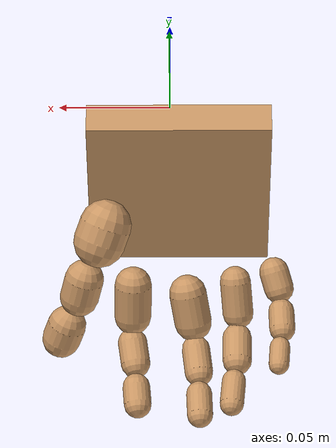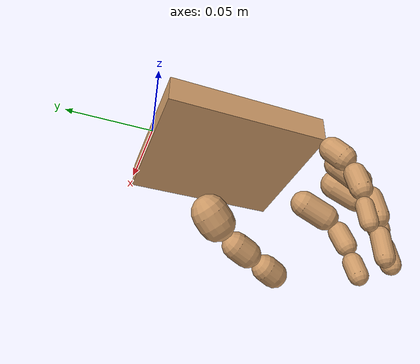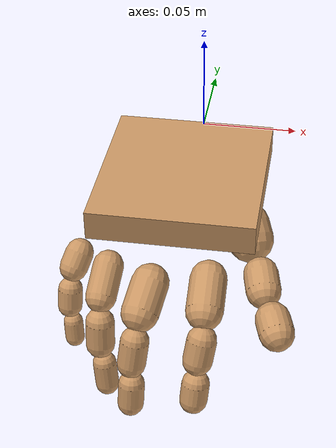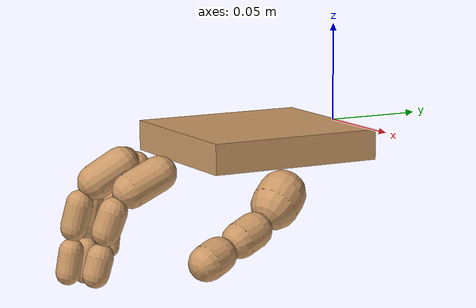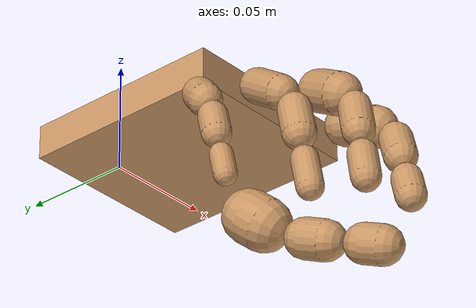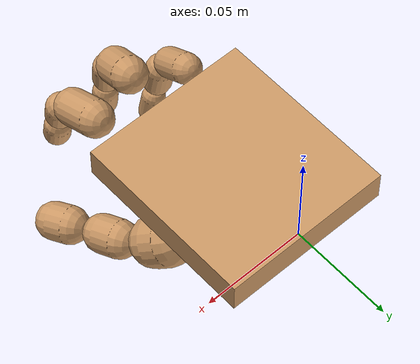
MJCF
<mujoco model="humanoid">
  <compiler coordinate="local" />
  <default>
    <joint damping="0.0" armature="0.01" stiffness="0.0" limited="true" />
    <geom conaffinity="1" condim="3" contype="7" margin="0.001" rgba="0.8 0.6 .4 1" />
  </default>
  <asset>
    <texture type="skybox" builtin="gradient" rgb1=".4 .5 .6" rgb2="0 0 0" width="100" height="100" />
    <texture builtin="flat" height="1278" mark="cross" markrgb="1 1 1" name="texgeom" random="0.01" rgb1="0.8 0.6 0.4" rgb2="0.8 0.6 0.4" type="cube" width="127" />
    <texture builtin="checker" height="100" name="texplane" rgb1="0 0 0" rgb2="0.8 0.8 0.8" type="2d" width="100" />
    <material name="MatPlane" reflectance="0.5" shininess="1" specular="1" texrepeat="60 60" texture="texplane" />
    <material name="geom" texture="texgeom" texuniform="true" />
  </asset>
  <worldbody>
    <light cutoff="100" diffuse="1 1 1" dir="-0 0 -1.3" directional="true" exponent="1" pos="0 0 1.3" specular=".1 .1 .1" />
    <geom conaffinity="1" condim="3" name="floor" pos="0 0 0" rgba="0.8 0.9 0.8 1" size="100 100 .2" type="plane" material="MatPlane" />
    <body name="Pelvis" pos="0 0 0">
      <body name="R_Wrist_s" pos="0 0 0">
        <joint name="R_Wrist_sx" type="slide" pos="0 0 0" axis="1 0 0" stiffness="10" damping="1" armature="0.02" range="-5.0000 5.0000" />
        <joint name="R_Wrist_sy" type="slide" pos="0 0 0" axis="0 1 0" stiffness="10" damping="1" armature="0.02" range="-5.0000 5.0000" />
        <joint name="R_Wrist_sz" type="slide" pos="0 0 0" axis="0 0 1" stiffness="10" damping="1" armature="0.02" range="-5.0000 5.0000" />
        <body name="R_Wrist" pos="0 0 0">
          <joint name="R_Wrist_x" type="hinge" pos="0 0 0" axis="1 0 0" stiffness="300" damping="30" armature="0.02" range="-180.0000 180.0000" />
          <joint name="R_Wrist_y" type="hinge" pos="0 0 0" axis="0 1 0" stiffness="300" damping="30" armature="0.02" range="-180.0000 180.0000" />
          <joint name="R_Wrist_z" type="hinge" pos="0 0 0" axis="0 0 1" stiffness="300" damping="30" armature="0.02" range="-180.0000 180.0000" />
          <geom type="box" contype="1" conaffinity="1" density="1000" pos="-0.0041 -0.0436 -0.0077" size="0.0419 0.0456 0.0077" quat="1.0000 0.0000 0.0000 0.0000" />
          <body name="R_Index1" pos="0.018 -0.102 -0.0121">
            <joint name="R_Index1_x" type="hinge" pos="0 0 0" axis="1 0 0" stiffness="100" damping="10" armature="0.02" range="-180.0000 180.0000" />
            <joint name="R_Index1_y" type="hinge" pos="0 0 0" axis="0 1 0" stiffness="100" damping="10" armature="0.02" range="-180.0000 180.0000" />
            <joint name="R_Index1_z" type="hinge" pos="0 0 0" axis="0 0 1" stiffness="100" damping="10" armature="0.02" range="-180.0000 180.0000" />
            <geom type="capsule" contype="1" conaffinity="1" density="1000" fromto="0.0001 -0.0081 -0.0036 0.0004 -0.0237 -0.0105" size="0.0089" />
            <body name="R_Index2" pos="0.0016 -0.0307 -0.0131">
              <joint name="R_Index2_x" type="hinge" pos="0 0 0" axis="1 0 0" stiffness="100" damping="10" armature="0.02" range="-180.0000 180.0000" />
              <joint name="R_Index2_y" type="hinge" pos="0 0 0" axis="0 1 0" stiffness="100" damping="10" armature="0.02" range="-180.0000 180.0000" />
              <joint name="R_Index2_z" type="hinge" pos="0 0 0" axis="0 0 1" stiffness="100" damping="10" armature="0.02" range="-180.0000 180.0000" />
              <geom type="capsule" contype="1" conaffinity="1" density="1000" fromto="-0.0010 -0.0022 -0.0067 -0.0025 -0.0055 -0.0167" size="0.0071" />
              <body name="R_Index3" pos="-0.0025 -0.0067 -0.0223">
                <joint name="R_Index3_x" type="hinge" pos="0 0 0" axis="1 0 0" stiffness="100" damping="10" armature="0.02" range="-180.0000 180.0000" />
                <joint name="R_Index3_y" type="hinge" pos="0 0 0" axis="0 1 0" stiffness="100" damping="10" armature="0.02" range="-180.0000 180.0000" />
                <joint name="R_Index3_z" type="hinge" pos="0 0 0" axis="0 0 1" stiffness="100" damping="10" armature="0.02" range="-180.0000 180.0000" />
                <geom type="capsule" contype="1" conaffinity="1" density="1000" fromto="-0.0004 -0.0017 -0.0063 -0.0011 -0.0040 -0.0150" size="0.0066" />
              </body>
            </body>
          </body>
          <body name="R_Middle1" pos="-0.0067 -0.1105 -0.01">
            <joint name="R_Middle1_x" type="hinge" pos="0 0 0" axis="1 0 0" stiffness="100" damping="10" armature="0.02" range="-180.0000 180.0000" />
            <joint name="R_Middle1_y" type="hinge" pos="0 0 0" axis="0 1 0" stiffness="100" damping="10" armature="0.02" range="-180.0000 180.0000" />
            <joint name="R_Middle1_z" type="hinge" pos="0 0 0" axis="0 0 1" stiffness="100" damping="10" armature="0.02" range="-180.0000 180.0000" />
            <geom type="capsule" contype="1" conaffinity="1" density="1000" fromto="-0.0015 -0.0075 -0.0047 -0.0041 -0.0203 -0.0127" size="0.009" />
            <body name="R_Middle2" pos="-0.0047 -0.0268 -0.0164">
              <joint name="R_Middle2_x" type="hinge" pos="0 0 0" axis="1 0 0" stiffness="100" damping="10" armature="0.02" range="-180.0000 180.0000" />
              <joint name="R_Middle2_y" type="hinge" pos="0 0 0" axis="0 1 0" stiffness="100" damping="10" armature="0.02" range="-180.0000 180.0000" />
              <joint name="R_Middle2_z" type="hinge" pos="0 0 0" axis="0 0 1" stiffness="100" damping="10" armature="0.02" range="-180.0000 180.0000" />
              <geom type="capsule" contype="1" conaffinity="1" density="1000" fromto="-0.0007 -0.0015 -0.0066 -0.0021 -0.0042 -0.0186" size="0.0068" />
              <body name="R_Middle3" pos="-0.0019 -0.0047 -0.0242">
                <joint name="R_Middle3_x" type="hinge" pos="0 0 0" axis="1 0 0" stiffness="100" damping="10" armature="0.02" range="-180.0000 180.0000" />
                <joint name="R_Middle3_y" type="hinge" pos="0 0 0" axis="0 1 0" stiffness="100" damping="10" armature="0.02" range="-180.0000 180.0000" />
                <joint name="R_Middle3_z" type="hinge" pos="0 0 0" axis="0 0 1" stiffness="100" damping="10" armature="0.02" range="-180.0000 180.0000" />
                <geom type="capsule" contype="1" conaffinity="1" density="1000" fromto="-0.0002 -0.0010 -0.0061 -0.0006 -0.0028 -0.0171" size="0.0062" />
              </body>
            </body>
          </body>
          <body name="R_Pinky1" pos="-0.0471 -0.0857 -0.0188">
            <joint name="R_Pinky1_x" type="hinge" pos="0 0 0" axis="1 0 0" stiffness="100" damping="10" armature="0.02" range="-180.0000 180.0000" />
            <joint name="R_Pinky1_y" type="hinge" pos="0 0 0" axis="0 1 0" stiffness="100" damping="10" armature="0.02" range="-180.0000 180.0000" />
            <joint name="R_Pinky1_z" type="hinge" pos="0 0 0" axis="0 0 1" stiffness="100" damping="10" armature="0.02" range="-180.0000 180.0000" />
            <geom type="capsule" contype="1" conaffinity="1" density="1000" fromto="-0.0019 -0.0044 -0.0050 -0.0042 -0.0095 -0.0109" size="0.007" />
            <body name="R_Pinky2" pos="-0.0051 -0.0129 -0.0149">
              <joint name="R_Pinky2_x" type="hinge" pos="0 0 0" axis="1 0 0" stiffness="100" damping="10" armature="0.02" range="-180.0000 180.0000" />
              <joint name="R_Pinky2_y" type="hinge" pos="0 0 0" axis="0 1 0" stiffness="100" damping="10" armature="0.02" range="-180.0000 180.0000" />
              <joint name="R_Pinky2_z" type="hinge" pos="0 0 0" axis="0 0 1" stiffness="100" damping="10" armature="0.02" range="-180.0000 180.0000" />
              <geom type="capsule" contype="1" conaffinity="1" density="1000" fromto="-0.0001 -0.0015 -0.0059 -0.0004 -0.0036 -0.0147" size="0.0061" />
              <body name="R_Pinky3" pos="0.0005 -0.0041 -0.0196">
                <joint name="R_Pinky3_x" type="hinge" pos="0 0 0" axis="1 0 0" stiffness="100" damping="10" armature="0.02" range="-180.0000 180.0000" />
                <joint name="R_Pinky3_y" type="hinge" pos="0 0 0" axis="0 1 0" stiffness="100" damping="10" armature="0.02" range="-180.0000 180.0000" />
                <joint name="R_Pinky3_z" type="hinge" pos="0 0 0" axis="0 0 1" stiffness="100" damping="10" armature="0.02" range="-180.0000 180.0000" />
                <geom type="capsule" contype="1" conaffinity="1" density="1000" fromto="0.0004 -0.0008 -0.0047 0.0011 -0.0023 -0.0138" size="0.0048" />
              </body>
            </body>
          </body>
          <body name="R_Ring1" pos="-0.0304 -0.0991 -0.0134">
            <joint name="R_Ring1_x" type="hinge" pos="0 0 0" axis="1 0 0" stiffness="100" damping="10" armature="0.02" range="-180.0000 180.0000" />
            <joint name="R_Ring1_y" type="hinge" pos="0 0 0" axis="0 1 0" stiffness="100" damping="10" armature="0.02" range="-180.0000 180.0000" />
            <joint name="R_Ring1_z" type="hinge" pos="0 0 0" axis="0 0 1" stiffness="100" damping="10" armature="0.02" range="-180.0000 180.0000" />
            <geom type="capsule" contype="1" conaffinity="1" density="1000" fromto="-0.0006 -0.0060 -0.0043 -0.0019 -0.0190 -0.0135" size="0.0074" />
            <body name="R_Ring2" pos="-0.0015 -0.024 -0.0168">
              <joint name="R_Ring2_x" type="hinge" pos="0 0 0" axis="1 0 0" stiffness="100" damping="10" armature="0.02" range="-180.0000 180.0000" />
              <joint name="R_Ring2_y" type="hinge" pos="0 0 0" axis="0 1 0" stiffness="100" damping="10" armature="0.02" range="-180.0000 180.0000" />
              <joint name="R_Ring2_z" type="hinge" pos="0 0 0" axis="0 0 1" stiffness="100" damping="10" armature="0.02" range="-180.0000 180.0000" />
              <geom type="capsule" contype="1" conaffinity="1" density="1000" fromto="0.0001 -0.0013 -0.0069 0.0002 -0.0035 -0.0186" size="0.007" />
              <body name="R_Ring3" pos="0.0013 -0.0038 -0.0245">
                <joint name="R_Ring3_x" type="hinge" pos="0 0 0" axis="1 0 0" stiffness="100" damping="10" armature="0.02" range="-180.0000 180.0000" />
                <joint name="R_Ring3_y" type="hinge" pos="0 0 0" axis="0 1 0" stiffness="100" damping="10" armature="0.02" range="-180.0000 180.0000" />
                <joint name="R_Ring3_z" type="hinge" pos="0 0 0" axis="0 0 1" stiffness="100" damping="10" armature="0.02" range="-180.0000 180.0000" />
                <geom type="capsule" contype="1" conaffinity="1" density="1000" fromto="0.0006 -0.0007 -0.0056 0.0018 -0.0022 -0.0178" size="0.0057" />
              </body>
            </body>
          </body>
          <body name="R_Thumb1" pos="0.0257 -0.0391 -0.0223">
            <joint name="R_Thumb1_x" type="hinge" pos="0 0 0" axis="1 0 0" stiffness="100" damping="10" armature="0.02" range="-180.0000 180.0000" />
            <joint name="R_Thumb1_y" type="hinge" pos="0 0 0" axis="0 1 0" stiffness="100" damping="10" armature="0.02" range="-180.0000 180.0000" />
            <joint name="R_Thumb1_z" type="hinge" pos="0 0 0" axis="0 0 1" stiffness="100" damping="10" armature="0.02" range="-180.0000 180.0000" />
            <geom type="capsule" contype="1" conaffinity="1" density="1000" fromto="0.0041 -0.0086 -0.0074 0.0069 -0.0144 -0.0123" size="0.0121" />
            <body name="R_Thumb2" pos="0.012 -0.022 -0.0187">
              <joint name="R_Thumb2_x" type="hinge" pos="0 0 0" axis="1 0 0" stiffness="100" damping="10" armature="0.02" range="-180.0000 180.0000" />
              <joint name="R_Thumb2_y" type="hinge" pos="0 0 0" axis="0 1 0" stiffness="100" damping="10" armature="0.02" range="-180.0000 180.0000" />
              <joint name="R_Thumb2_z" type="hinge" pos="0 0 0" axis="0 0 1" stiffness="100" damping="10" armature="0.02" range="-180.0000 180.0000" />
              <geom type="capsule" contype="1" conaffinity="1" density="1000" fromto="0.0022 -0.0083 -0.0030 0.0046 -0.0174 -0.0064" size="0.0091" />
              <body name="R_Thumb3" pos="0.0078 -0.0247 -0.0084">
                <joint name="R_Thumb3_x" type="hinge" pos="0 0 0" axis="1 0 0" stiffness="100" damping="10" armature="0.02" range="-180.0000 180.0000" />
                <joint name="R_Thumb3_y" type="hinge" pos="0 0 0" axis="0 1 0" stiffness="100" damping="10" armature="0.02" range="-180.0000 180.0000" />
                <joint name="R_Thumb3_z" type="hinge" pos="0 0 0" axis="0 0 1" stiffness="100" damping="10" armature="0.02" range="-180.0000 180.0000" />
                <geom type="capsule" contype="1" conaffinity="1" density="1000" fromto="0.0030 -0.0080 -0.0025 0.0058 -0.0156 -0.0049" size="0.009" />
              </body>
            </body>
          </body>
        </body>
      </body>
    </body>
  </worldbody>
  <actuator>
    <motor name="R_Wrist_sx" joint="R_Wrist_sx" gear="1" />
    <motor name="R_Wrist_sy" joint="R_Wrist_sy" gear="1" />
    <motor name="R_Wrist_sz" joint="R_Wrist_sz" gear="1" />
    <motor name="R_Wrist_x" joint="R_Wrist_x" gear="1" />
    <motor name="R_Wrist_y" joint="R_Wrist_y" gear="1" />
    <motor name="R_Wrist_z" joint="R_Wrist_z" gear="1" />
    <motor name="R_Index1_x" joint="R_Index1_x" gear="1" />
    <motor name="R_Index1_y" joint="R_Index1_y" gear="1" />
    <motor name="R_Index1_z" joint="R_Index1_z" gear="1" />
    <motor name="R_Index2_x" joint="R_Index2_x" gear="1" />
    <motor name="R_Index2_y" joint="R_Index2_y" gear="1" />
    <motor name="R_Index2_z" joint="R_Index2_z" gear="1" />
    <motor name="R_Index3_x" joint="R_Index3_x" gear="1" />
    <motor name="R_Index3_y" joint="R_Index3_y" gear="1" />
    <motor name="R_Index3_z" joint="R_Index3_z" gear="1" />
    <motor name="R_Middle1_x" joint="R_Middle1_x" gear="1" />
    <motor name="R_Middle1_y" joint="R_Middle1_y" gear="1" />
    <motor name="R_Middle1_z" joint="R_Middle1_z" gear="1" />
    <motor name="R_Middle2_x" joint="R_Middle2_x" gear="1" />
    <motor name="R_Middle2_y" joint="R_Middle2_y" gear="1" />
    <motor name="R_Middle2_z" joint="R_Middle2_z" gear="1" />
    <motor name="R_Middle3_x" joint="R_Middle3_x" gear="1" />
    <motor name="R_Middle3_y" joint="R_Middle3_y" gear="1" />
    <motor name="R_Middle3_z" joint="R_Middle3_z" gear="1" />
    <motor name="R_Pinky1_x" joint="R_Pinky1_x" gear="1" />
    <motor name="R_Pinky1_y" joint="R_Pinky1_y" gear="1" />
    <motor name="R_Pinky1_z" joint="R_Pinky1_z" gear="1" />
    <motor name="R_Pinky2_x" joint="R_Pinky2_x" gear="1" />
    <motor name="R_Pinky2_y" joint="R_Pinky2_y" gear="1" />
    <motor name="R_Pinky2_z" joint="R_Pinky2_z" gear="1" />
    <motor name="R_Pinky3_x" joint="R_Pinky3_x" gear="1" />
    <motor name="R_Pinky3_y" joint="R_Pinky3_y" gear="1" />
    <motor name="R_Pinky3_z" joint="R_Pinky3_z" gear="1" />
    <motor name="R_Ring1_x" joint="R_Ring1_x" gear="1" />
    <motor name="R_Ring1_y" joint="R_Ring1_y" gear="1" />
    <motor name="R_Ring1_z" joint="R_Ring1_z" gear="1" />
    <motor name="R_Ring2_x" joint="R_Ring2_x" gear="1" />
    <motor name="R_Ring2_y" joint="R_Ring2_y" gear="1" />
    <motor name="R_Ring2_z" joint="R_Ring2_z" gear="1" />
    <motor name="R_Ring3_x" joint="R_Ring3_x" gear="1" />
    <motor name="R_Ring3_y" joint="R_Ring3_y" gear="1" />
    <motor name="R_Ring3_z" joint="R_Ring3_z" gear="1" />
    <motor name="R_Thumb1_x" joint="R_Thumb1_x" gear="1" />
    <motor name="R_Thumb1_y" joint="R_Thumb1_y" gear="1" />
    <motor name="R_Thumb1_z" joint="R_Thumb1_z" gear="1" />
    <motor name="R_Thumb2_x" joint="R_Thumb2_x" gear="1" />
    <motor name="R_Thumb2_y" joint="R_Thumb2_y" gear="1" />
    <motor name="R_Thumb2_z" joint="R_Thumb2_z" gear="1" />
    <motor name="R_Thumb3_x" joint="R_Thumb3_x" gear="1" />
    <motor name="R_Thumb3_y" joint="R_Thumb3_y" gear="1" />
    <motor name="R_Thumb3_z" joint="R_Thumb3_z" gear="1" />
  </actuator>
  <contact />
  <sensor />
  <size njmax="700" nconmax="700" />
</mujoco>
